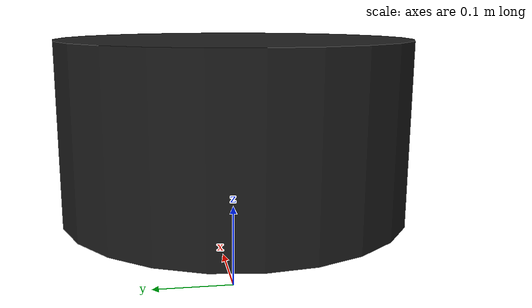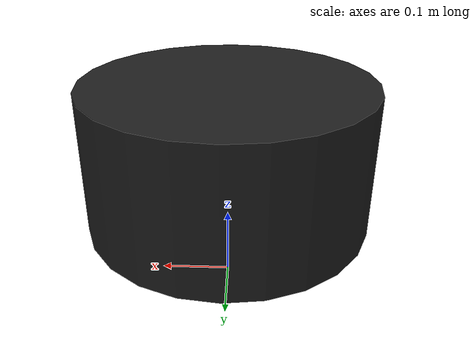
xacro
<?xml version="1.0"?>
<robot xmlns:xacro="http://ros.org/wiki/xacro">
  <xacro:property name="base_radius" value="0.20"/>
  <xacro:property name="base_height" value="0.20"/>
  <xacro:property name="wheel_radius" value="0.05"/>
  <xacro:property name="wheel_length" value="0.05"/>

  <link name="base_footprint"/>
  <link name="base_link">
    <visual>
      <origin xyz="0 0 ${base_height / 2.0}" rpy="0 0 0"/>
      <geometry><cylinder radius="${base_radius}" length="${base_height}"/></geometry>
      <material name="black"/>
    </visual>
    <collision>
      <origin xyz="0 0 ${base_height / 2.0}" rpy="0 0 0"/>
      <geometry><cylinder radius="${base_radius}" length="${base_height}"/></geometry>
    </collision>
    <xacro:cylinder_inertia m="10.0" r="${base_radius}" l="${base_height}"
                            o_xyz="0 0 ${base_height / 2.0}" o_rpy="0 0 0"/>
  </link>

  <joint name="base_joint" type="fixed">
    <parent link="base_footprint"/>
    <child link="base_link"/>
    <origin xyz="0 0 ${base_height / 2.0}" rpy="0 0 0"/>
  </joint>
</robot>
